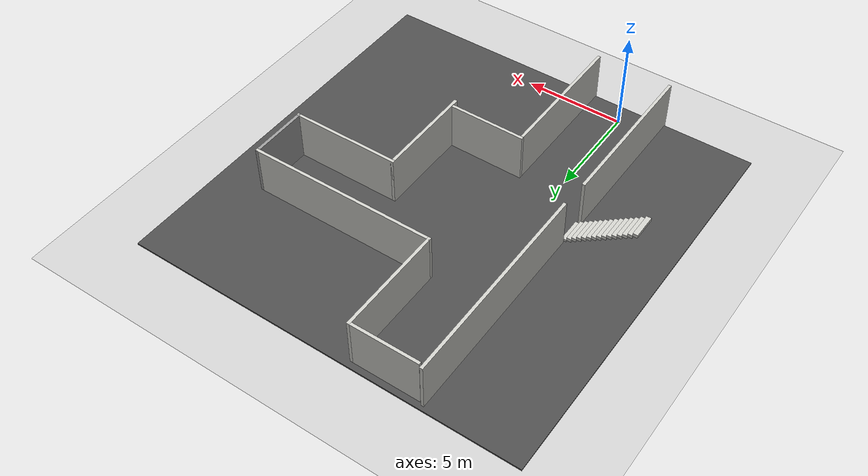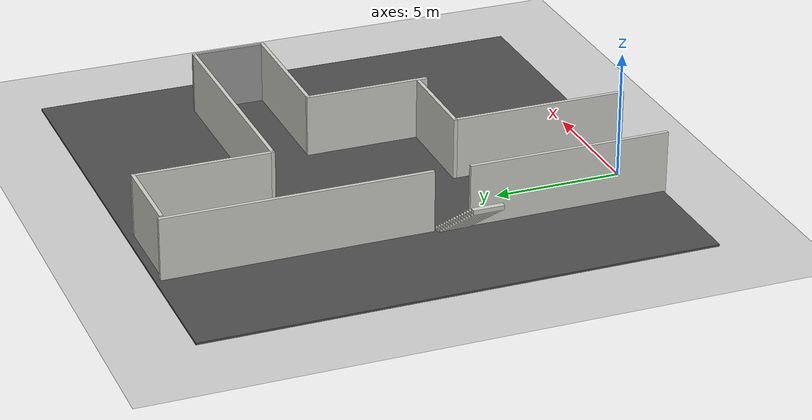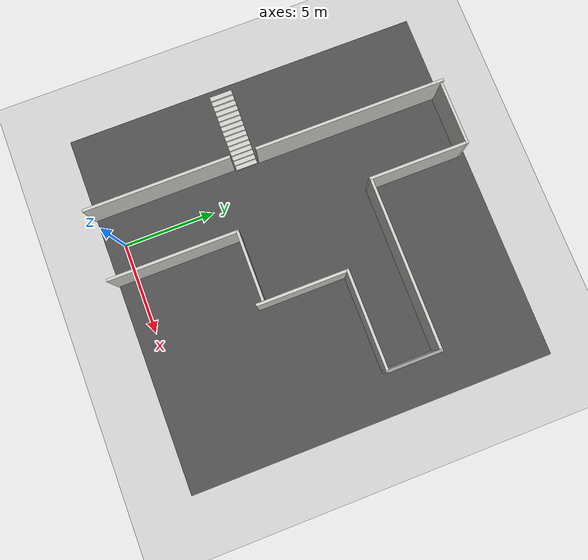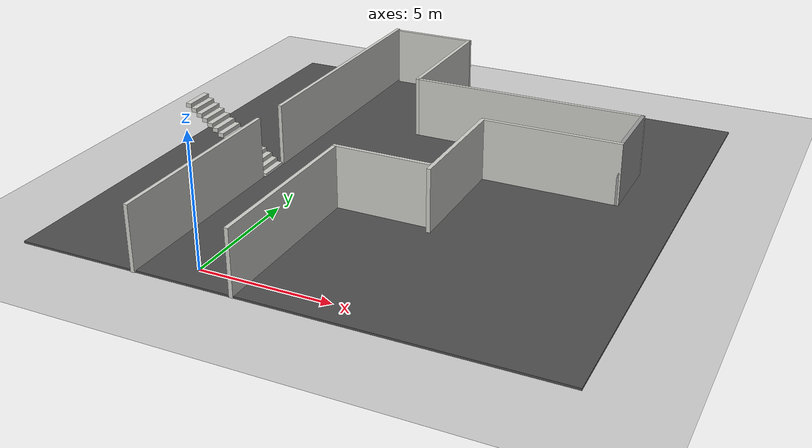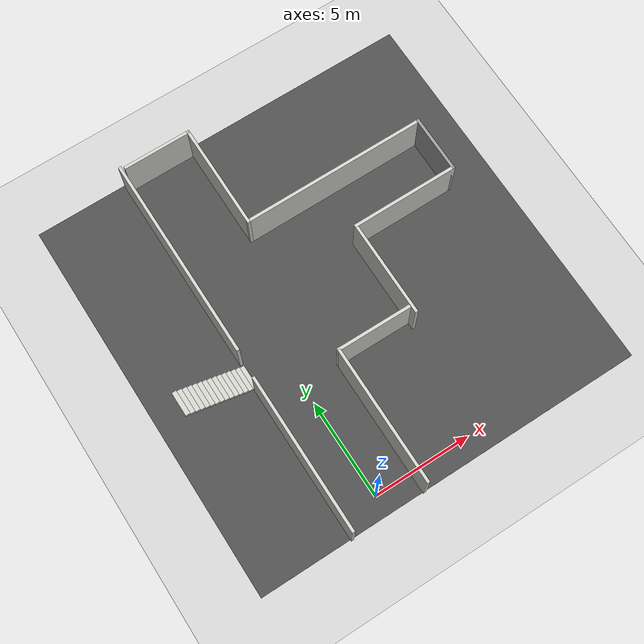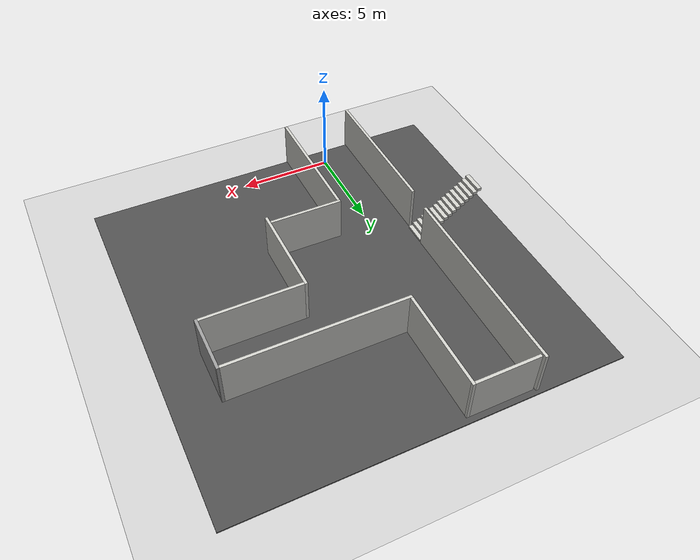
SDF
<sdf version="1.7">
 <world name="default">
  <light name="sun" type="directional">
   <pose>0 0 10 0 -0 0</pose>
   <diffuse>0.8 0.8 0.8 1</diffuse>
   <specular>0.2 0.2 0.2 1</specular>
   <attenuation>
    <range>1000</range>
    <constant>0.9</constant>
    <linear>0.01</linear>
    <quadratic>0.001</quadratic>
   </attenuation>
   <direction>-0.5 0.1 -0.9</direction>
   <spot><inner_angle>0</inner_angle><outer_angle>0</outer_angle><falloff>0</falloff></spot>
  </light>
  <model name="ground_plane">
   <static>1</static>
   <link name="link">
    <collision name="collision">
     <geometry><plane><normal>0 0 1</normal><size>100 100</size></plane></geometry>
     <surface><friction><ode><mu>100</mu><mu2>50</mu2></ode></friction></surface>
    </collision>
    <visual name="visual">
     <cast_shadows>0</cast_shadows>
     <geometry><plane><normal>0 0 1</normal><size>100 100</size></plane></geometry>
     <material>
      <script><uri>file://media/materials/scripts/gazebo.material</uri><name>Gazebo/Grey</name></script>
     </material>
    </visual>
   </link>
  </model>
  <gravity>0 0 -9.8</gravity>
  <magnetic_field>6e-06 2.3e-05 -4.2e-05</magnetic_field>
  <atmosphere type="adiabatic"/>
  <physics type="ode">
   <max_step_size>0.001</max_step_size>
   <real_time_factor>1</real_time_factor>
   <real_time_update_rate>1000</real_time_update_rate>
  </physics>
  <scene><ambient>0.4 0.4 0.4 1</ambient><background>0.7 0.7 0.7 1</background><shadows>1</shadows></scene>
  <spherical_coordinates>
   <surface_model>EARTH_WGS84</surface_model>
   <latitude_deg>0</latitude_deg>
   <longitude_deg>0</longitude_deg>
   <elevation>0</elevation>
   <heading_deg>0</heading_deg>
  </spherical_coordinates>
  <model name="miDepa">
   <pose>2.97392 8.86886 0 0 -0 0</pose>
   <link name="Stairs_0">
    <visual name="Stairs_0_Visual_0">
     <pose>-4.8385 -1.25175 0.083333 0 -0 -1.5708</pose>
     <geometry><box><size>1.2 0.233333 0.166667</size></box></geometry>
     <material>
      <script><uri>file://media/materials/scripts/gazebo.material</uri><name>Gazebo/CeilingTiled</name></script>
      <ambient>1 1 1 1</ambient>
     </material>
     <meta><layer>0</layer></meta>
    </visual>
    <collision name="Stairs_0_Collision_0">
     <geometry><box><size>1.2 0.233333 0.166667</size></box></geometry>
     <pose>-4.8385 -1.25175 0.083333 0 -0 -1.5708</pose>
    </collision>
    <visual name="Stairs_0_Visual_1">
     <pose>-5.07183 -1.25175 0.25 0 -0 -1.5708</pose>
     <geometry><box><size>1.2 0.233333 0.166667</size></box></geometry>
     <material>
      <script><uri>file://media/materials/scripts/gazebo.material</uri><name>Gazebo/CeilingTiled</name></script>
      <ambient>1 1 1 1</ambient>
     </material>
     <meta><layer>0</layer></meta>
    </visual>
    <collision name="Stairs_0_Collision_1">
     <geometry><box><size>1.2 0.233333 0.166667</size></box></geometry>
     <pose>-5.07183 -1.25175 0.25 0 -0 -1.5708</pose>
    </collision>
    <visual name="Stairs_0_Visual_2">
     <pose>-5.30516 -1.25175 0.416667 0 -0 -1.5708</pose>
     <geometry><box><size>1.2 0.233333 0.166667</size></box></geometry>
     <material>
      <script><uri>file://media/materials/scripts/gazebo.material</uri><name>Gazebo/CeilingTiled</name></script>
      <ambient>1 1 1 1</ambient>
     </material>
     <meta><layer>0</layer></meta>
    </visual>
    <collision name="Stairs_0_Collision_2">
     <geometry><box><size>1.2 0.233333 0.166667</size></box></geometry>
     <pose>-5.30516 -1.25175 0.416667 0 -0 -1.5708</pose>
    </collision>
    <visual name="Stairs_0_Visual_3">
     <pose>-5.5385 -1.25175 0.583333 0 -0 -1.5708</pose>
     <geometry><box><size>1.2 0.233333 0.166667</size></box></geometry>
     <material>
      <script><uri>file://media/materials/scripts/gazebo.material</uri><name>Gazebo/CeilingTiled</name></script>
      <ambient>1 1 1 1</ambient>
     </material>
     <meta><layer>0</layer></meta>
    </visual>
    <collision name="Stairs_0_Collision_3">
     <geometry><box><size>1.2 0.233333 0.166667</size></box></geometry>
     <pose>-5.5385 -1.25175 0.583333 0 -0 -1.5708</pose>
    </collision>
    <visual name="Stairs_0_Visual_4">
     <pose>-5.77183 -1.25175 0.75 0 -0 -1.5708</pose>
     <geometry><box><size>1.2 0.233333 0.166667</size></box></geometry>
     <material>
      <script><uri>file://media/materials/scripts/gazebo.material</uri><name>Gazebo/CeilingTiled</name></script>
      <ambient>1 1 1 1</ambient>
     </material>
     <meta><layer>0</layer></meta>
    </visual>
    <collision name="Stairs_0_Collision_4">
     <geometry><box><size>1.2 0.233333 0.166667</size></box></geometry>
     <pose>-5.77183 -1.25175 0.75 0 -0 -1.5708</pose>
    </collision>
    <visual name="Stairs_0_Visual_5">
     <pose>-6.00516 -1.25175 0.916667 0 -0 -1.5708</pose>
     <geometry><box><size>1.2 0.233333 0.166667</size></box></geometry>
     <material>
      <script><uri>file://media/materials/scripts/gazebo.material</uri><name>Gazebo/CeilingTiled</name></script>
      <ambient>1 1 1 1</ambient>
     </material>
     <meta><layer>0</layer></meta>
    </visual>
    <collision name="Stairs_0_Collision_5">
     <geometry><box><size>1.2 0.233333 0.166667</size></box></geometry>
     <pose>-6.00516 -1.25175 0.916667 0 -0 -1.5708</pose>
    </collision>
    <visual name="Stairs_0_Visual_6">
     <pose>-6.2385 -1.25175 1.08333 0 -0 -1.5708</pose>
     <geometry><box><size>1.2 0.233333 0.166667</size></box></geometry>
     <material>
      <script><uri>file://media/materials/scripts/gazebo.material</uri><name>Gazebo/CeilingTiled</name></script>
      <ambient>1 1 1 1</ambient>
     </material>
     <meta><layer>0</layer></meta>
    </visual>
    <collision name="Stairs_0_Collision_6">
     <geometry><box><size>1.2 0.233333 0.166667</size></box></geometry>
     <pose>-6.2385 -1.25175 1.08333 0 -0 -1.5708</pose>
    </collision>
    <visual name="Stairs_0_Visual_7">
     <pose>-6.47183 -1.25175 1.25 0 -0 -1.5708</pose>
     <geometry><box><size>1.2 0.233333 0.166667</size></box></geometry>
     <material>
      <script><uri>file://media/materials/scripts/gazebo.material</uri><name>Gazebo/CeilingTiled</name></script>
      <ambient>1 1 1 1</ambient>
     </material>
     <meta><layer>0</layer></meta>
    </visual>
    <collision name="Stairs_0_Collision_7">
     <geometry><box><size>1.2 0.233333 0.166667</size></box></geometry>
     <pose>-6.47183 -1.25175 1.25 0 -0 -1.5708</pose>
    </collision>
    <visual name="Stairs_0_Visual_8">
     <pose>-6.70517 -1.25175 1.41667 0 -0 -1.5708</pose>
     <geometry><box><size>1.2 0.233333 0.166667</size></box></geometry>
     <material>
      <script><uri>file://media/materials/scripts/gazebo.material</uri><name>Gazebo/CeilingTiled</name></script>
      <ambient>1 1 1 1</ambient>
     </material>
     <meta><layer>0</layer></meta>
    </visual>
    <collision name="Stairs_0_Collision_8">
     <geometry><box><size>1.2 0.233333 0.166667</size></box></geometry>
     <pose>-6.70517 -1.25175 1.41667 0 -0 -1.5708</pose>
    </collision>
    <visual name="Stairs_0_Visual_9">
     <pose>-6.9385 -1.25175 1.58333 0 -0 -1.5708</pose>
     <geometry><box><size>1.2 0.233333 0.166667</size></box></geometry>
     <material>
      <script><uri>file://media/materials/scripts/gazebo.material</uri><name>Gazebo/CeilingTiled</name></script>
      <ambient>1 1 1 1</ambient>
     </material>
     <meta><layer>0</layer></meta>
    </visual>
    <collision name="Stairs_0_Collision_9">
     <geometry><box><size>1.2 0.233333 0.166667</size></box></geometry>
     <pose>-6.9385 -1.25175 1.58333 0 -0 -1.5708</pose>
    </collision>
    <visual name="Stairs_0_Visual_10">
     <pose>-7.17183 -1.25175 1.75 0 -0 -1.5708</pose>
     <geometry><box><size>1.2 0.233333 0.166667</size></box></geometry>
     <material>
      <script><uri>file://media/materials/scripts/gazebo.material</uri><name>Gazebo/CeilingTiled</name></script>
      <ambient>1 1 1 1</ambient>
     </material>
     <meta><layer>0</layer></meta>
    </visual>
    <collision name="Stairs_0_Collision_10">
     <geometry><box><size>1.2 0.233333 0.166667</size></box></geometry>
     <pose>-7.17183 -1.25175 1.75 0 -0 -1.5708</pose>
    </collision>
    <visual name="Stairs_0_Visual_11">
     <pose>-7.40517 -1.25175 1.91667 0 -0 -1.5708</pose>
     <geometry><box><size>1.2 0.233333 0.166667</size></box></geometry>
     <material>
      <script><uri>file://media/materials/scripts/gazebo.material</uri><name>Gazebo/CeilingTiled</name></script>
      <ambient>1 1 1 1</ambient>
     </material>
     <meta><layer>0</layer></meta>
    </visual>
    <collision name="Stairs_0_Collision_11">
     <geometry><box><size>1.2 0.233333 0.166667</size></box></geometry>
     <pose>-7.40517 -1.25175 1.91667 0 -0 -1.5708</pose>
    </collision>
    <visual name="Stairs_0_Visual_12">
     <pose>-7.6385 -1.25175 2.08333 0 -0 -1.5708</pose>
     <geometry><box><size>1.2 0.233333 0.166667</size></box></geometry>
     <material>
      <script><uri>file://media/materials/scripts/gazebo.material</uri><name>Gazebo/CeilingTiled</name></script>
      <ambient>1 1 1 1</ambient>
     </material>
     <meta><layer>0</layer></meta>
    </visual>
    <collision name="Stairs_0_Collision_12">
     <geometry><box><size>1.2 0.233333 0.166667</size></box></geometry>
     <pose>-7.6385 -1.25175 2.08333 0 -0 -1.5708</pose>
    </collision>
    <visual name="Stairs_0_Visual_13">
     <pose>-7.87183 -1.25175 2.25 0 -0 -1.5708</pose>
     <geometry><box><size>1.2 0.233333 0.166667</size></box></geometry>
     <material>
      <script><uri>file://media/materials/scripts/gazebo.material</uri><name>Gazebo/CeilingTiled</name></script>
      <ambient>1 1 1 1</ambient>
     </material>
     <meta><layer>0</layer></meta>
    </visual>
    <collision name="Stairs_0_Collision_13">
     <geometry><box><size>1.2 0.233333 0.166667</size></box></geometry>
     <pose>-7.87183 -1.25175 2.25 0 -0 -1.5708</pose>
    </collision>
    <visual name="Stairs_0_Visual_14">
     <pose>-8.10516 -1.25175 2.41667 0 -0 -1.5708</pose>
     <geometry><box><size>1.2 0.233333 0.166667</size></box></geometry>
     <material>
      <script><uri>file://media/materials/scripts/gazebo.material</uri><name>Gazebo/CeilingTiled</name></script>
      <ambient>1 1 1 1</ambient>
     </material>
     <meta><layer>0</layer></meta>
    </visual>
    <collision name="Stairs_0_Collision_14">
     <geometry><box><size>1.2 0.233333 0.166667</size></box></geometry>
     <pose>-8.10516 -1.25175 2.41667 0 -0 -1.5708</pose>
    </collision>
   </link>
   <link name="Wall_0">
    <collision name="Wall_0_Collision">
     <geometry><box><size>8 0.15 2.5</size></box></geometry>
     <pose>0 0 1.25 0 -0 0</pose>
    </collision>
    <visual name="Wall_0_Visual">
     <pose>0 0 1.25 0 -0 0</pose>
     <geometry><box><size>8 0.15 2.5</size></box></geometry>
     <material>
      <script><uri>file://media/materials/scripts/gazebo.material</uri><name>Gazebo/CeilingTiled</name></script>
      <ambient>1 1 1 1</ambient>
     </material>
     <meta><layer>0</layer></meta>
    </visual>
    <pose>-4.86368 -5.93977 0 0 -0 1.5708</pose>
   </link>
   <link name="Wall_13">
    <collision name="Wall_13_Collision">
     <geometry><box><size>10.5 0.15 2.5</size></box></geometry>
     <pose>0 0 1.25 0 -0 0</pose>
    </collision>
    <visual name="Wall_13_Visual">
     <pose>0 0 1.25 0 -0 0</pose>
     <geometry><box><size>10.5 0.15 2.5</size></box></geometry>
     <material>
      <script><uri>file://media/materials/scripts/gazebo.material</uri><name>Gazebo/CeilingTiled</name></script>
      <ambient>1 1 1 1</ambient>
     </material>
     <meta><layer>0</layer></meta>
    </visual>
    <pose>-4.78778 4.68977 0 0 -0 1.5708</pose>
   </link>
   <link name="Wall_15">
    <collision name="Wall_15_Collision">
     <geometry><box><size>3 0.15 2.5</size></box></geometry>
     <pose>0 0 1.25 0 -0 0</pose>
    </collision>
    <visual name="Wall_15_Visual">
     <pose>0 0 1.25 0 -0 0</pose>
     <geometry><box><size>3 0.15 2.5</size></box></geometry>
     <material>
      <script><uri>file://media/materials/scripts/gazebo.material</uri><name>Gazebo/Grey</name></script>
      <ambient>1 1 1 1</ambient>
     </material>
     <meta><layer>0</layer></meta>
    </visual>
    <pose>8.14683 2.98618 0 0 -0 1.5708</pose>
   </link>
   <link name="Wall_16">
    <collision name="Wall_16_Collision">
     <geometry><box><size>9.5 0.15 2.5</size></box></geometry>
     <pose>0 0 1.25 0 -0 0</pose>
    </collision>
    <visual name="Wall_16_Visual">
     <pose>0 0 1.25 0 -0 0</pose>
     <geometry><box><size>9.5 0.15 2.5</size></box></geometry>
     <material>
      <script><uri>file://media/materials/scripts/gazebo.material</uri><name>Gazebo/CeilingTiled</name></script>
      <ambient>1 1 1 1</ambient>
     </material>
     <meta><layer>0</layer></meta>
    </visual>
    <pose>3.47183 4.41118 0 0 -0 3.14159</pose>
   </link>
   <link name="Wall_17">
    <collision name="Wall_17_Collision">
     <geometry><box><size>5.5 0.15 2.5</size></box></geometry>
     <pose>0 0 1.25 0 -0 0</pose>
    </collision>
    <visual name="Wall_17_Visual">
     <pose>0 0 1.25 0 -0 0</pose>
     <geometry><box><size>5.5 0.15 2.5</size></box></geometry>
     <material>
      <script><uri>file://media/materials/scripts/gazebo.material</uri><name>Gazebo/CeilingTiled</name></script>
      <ambient>1 1 1 1</ambient>
     </material>
     <meta><layer>0</layer></meta>
    </visual>
    <pose>-1.20317 7.08618 0 0 -0 1.5708</pose>
   </link>
   <link name="Wall_19">
    <collision name="Wall_19_Collision">
     <geometry><box><size>3.5 0.15 2.5</size></box></geometry>
     <pose>0 0 1.25 0 -0 0</pose>
    </collision>
    <visual name="Wall_19_Visual">
     <pose>0 0 1.25 0 -0 0</pose>
     <geometry><box><size>3.5 0.15 2.5</size></box></geometry>
     <material>
      <script><uri>file://media/materials/scripts/gazebo.material</uri><name>Gazebo/CeilingTiled</name></script>
      <ambient>1 1 1 1</ambient>
     </material>
     <meta><layer>0</layer></meta>
    </visual>
    <pose>-2.87817 9.76118 0 0 -0 3.14159</pose>
   </link>
   <link name="Wall_2">
    <collision name="Wall_2_Collision">
     <geometry><box><size>6.98292 0.15 2.5</size></box></geometry>
     <pose>0 0 1.25 0 -0 0</pose>
    </collision>
    <visual name="Wall_2_Visual">
     <pose>0 0 1.25 0 -0 0</pose>
     <geometry><box><size>6.98292 0.15 2.5</size></box></geometry>
     <material>
      <script><uri>file://media/materials/scripts/gazebo.material</uri><name>Gazebo/CeilingTiled</name></script>
      <ambient>1 1 1 1</ambient>
     </material>
     <meta><layer>0</layer></meta>
    </visual>
    <pose>-1.05317 -6.42583 0 0 -0 1.5708</pose>
   </link>
   <link name="Wall_3">
    <collision name="Wall_3_Collision">
     <geometry><box><size>3.83733 0.15 2.5</size></box></geometry>
     <pose>0 0 1.25 0 -0 0</pose>
    </collision>
    <visual name="Wall_3_Visual">
     <pose>0 0 1.25 0 -0 0</pose>
     <geometry><box><size>3.83733 0.15 2.5</size></box></geometry>
     <material>
      <script><uri>file://media/materials/scripts/gazebo.material</uri><name>Gazebo/CeilingTiled</name></script>
      <ambient>1 1 1 1</ambient>
     </material>
     <meta><layer>0</layer></meta>
    </visual>
    <pose>0.790461 -2.93978 0 0 -0 -0.006387</pose>
   </link>
   <link name="Wall_5">
    <collision name="Wall_5_Collision">
     <geometry><box><size>4.98822 0.15 2.5</size></box></geometry>
     <pose>0 0 1.25 0 -0 0</pose>
    </collision>
    <visual name="Wall_5_Visual">
     <pose>0 0 1.25 0 -0 0</pose>
     <geometry><box><size>4.98822 0.15 2.5</size></box></geometry>
     <material>
      <script><uri>file://media/materials/scripts/gazebo.material</uri><name>Gazebo/CeilingTiled</name></script>
      <ambient>1 1 1 1</ambient>
     </material>
     <meta><layer>0</layer></meta>
    </visual>
    <pose>2.79683 -0.857929 0 0 -0 1.5708</pose>
   </link>
   <link name="Wall_6">
    <collision name="Wall_6_Collision">
     <geometry><box><size>5.5 0.15 2.5</size></box></geometry>
     <pose>0 0 1.25 0 -0 0</pose>
    </collision>
    <visual name="Wall_6_Visual">
     <pose>0 0 1.25 0 -0 0</pose>
     <geometry><box><size>5.5 0.15 2.5</size></box></geometry>
     <material>
      <script><uri>file://media/materials/scripts/gazebo.material</uri><name>Gazebo/CeilingTiled</name></script>
      <ambient>1 1 1 1</ambient>
     </material>
     <meta><layer>0</layer></meta>
    </visual>
    <pose>5.47183 1.56118 0 0 -0 0</pose>
   </link>
   <static>1</static>
  </model>
  <model name="asphalt_plane">
   <static>1</static>
   <link name="link">
    <collision name="collision"><geometry><box><size>20 20 0.1</size></box></geometry></collision>
    <visual name="visual">
     <cast_shadows>0</cast_shadows>
     <geometry><box><size>20 20 0.1</size></box></geometry>
     <material>
      <script>
       <uri>model://asphalt_plane/materials/scripts</uri>
       <uri>model://asphalt_plane/materials/textures</uri>
       <name>vrc/asphalt</name>
      </script>
     </material>
    </visual>
   </link>
   <pose>3.45402 9.00531 -0 0 -0 0</pose>
  </model>
 </world>
</sdf>
